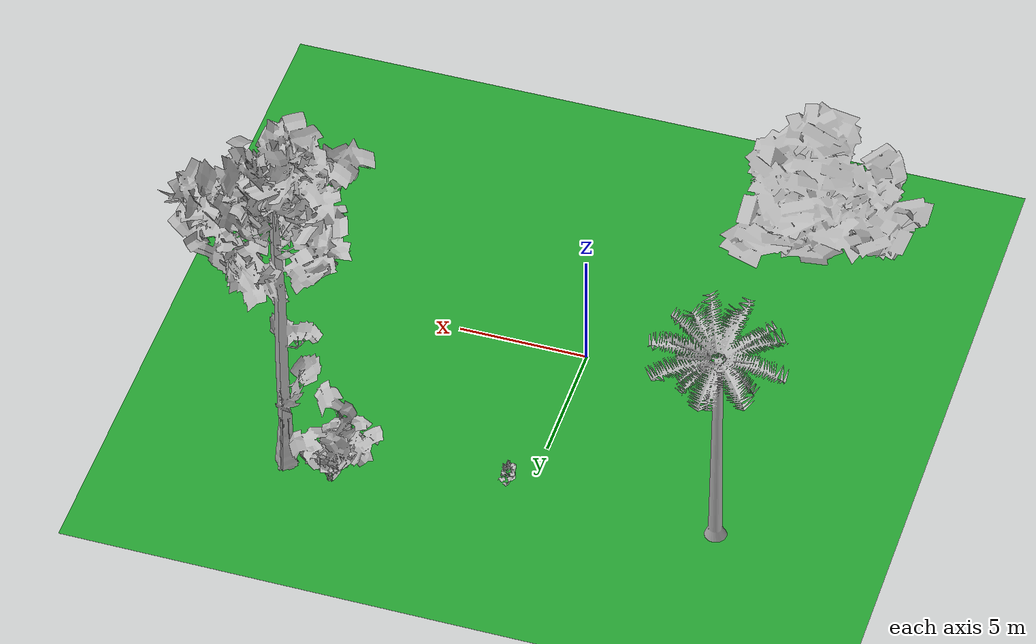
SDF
<sdf version="1.7">
 <world name="gmlaas">
  <light name="sun" type="directional">
   <pose>0 0 10 0 -0 0</pose>
   <diffuse>0.8 0.8 0.8 1</diffuse>
   <specular>0.2 0.2 0.2 1</specular>
   <attenuation>
    <range>1000</range>
    <constant>0.9</constant>
    <linear>0.01</linear>
    <quadratic>0.001</quadratic>
   </attenuation>
   <direction>-0.5 0.1 -0.9</direction>
   <spot><inner_angle>0</inner_angle><outer_angle>0</outer_angle><falloff>0</falloff></spot>
  </light>
  <model name="ground_plane">
   <static>1</static>
   <link name="link">
    <collision name="collision">
     <geometry><plane><normal>0 0 1</normal><size>100 100</size></plane></geometry>
     <surface>
      <contact><collide_bitmask>65535</collide_bitmask></contact>
      <friction><ode><mu>100</mu><mu2>50</mu2></ode></friction>
     </surface>
    </collision>
    <visual name="visual">
     <cast_shadows>0</cast_shadows>
     <geometry><plane><normal>0 0 1</normal><size>100 100</size></plane></geometry>
     <material>
      <script><uri>file://media/materials/scripts/gazebo.material</uri><name>Gazebo/Green</name></script>
     </material>
    </visual>
   </link>
  </model>
  <gravity>0 0 0</gravity>
  <magnetic_field>6e-06 2.3e-05 -4.2e-05</magnetic_field>
  <atmosphere type="adiabatic"/>
  <physics type="ode">
   <max_step_size>0.001</max_step_size>
   <real_time_factor>1</real_time_factor>
   <real_time_update_rate>1000</real_time_update_rate>
  </physics>
  <scene><ambient>0 0.4 0.4 1</ambient><background>0.2 0.7 0.7 1</background><shadows>1</shadows></scene>
  <spherical_coordinates>
   <surface_model>EARTH_WGS84</surface_model>
   <latitude_deg>0</latitude_deg>
   <longitude_deg>0</longitude_deg>
   <elevation>0</elevation>
   <heading_deg>0</heading_deg>
  </spherical_coordinates>
  <light name="user_spot_light_1" type="spot">
   <pose>4.60707 3.07046 1 0 -0 0</pose>
   <diffuse>0.5 0.5 0.5 1</diffuse>
   <specular>0.1 0.1 0.1 1</specular>
   <direction>0 0 -1</direction>
   <attenuation>
    <range>20</range>
    <constant>0.5</constant>
    <linear>0.01</linear>
    <quadratic>0.001</quadratic>
   </attenuation>
   <cast_shadows>0</cast_shadows>
   <spot><inner_angle>0.6</inner_angle><outer_angle>1</outer_angle><falloff>1</falloff></spot>
  </light>
  <model name="Decor - Palm Tree">
   <static>1</static>
   <link name="link">
    <collision name="collision">
     <geometry>
      <mesh><scale>0.02 0.02 0.02</scale><uri>model://palm_tree/meshes/palm_tree.dae</uri></mesh>
     </geometry>
    </collision>
    <visual name="visual">
     <geometry>
      <mesh><scale>0.02 0.02 0.02</scale><uri>model://palm_tree/meshes/palm_tree.dae</uri></mesh>
     </geometry>
    </visual>
   </link>
   <pose>-7.22227 7.39987 0 0 -0 0</pose>
  </model>
  <model name="Decor - Oak tree">
   <static>1</static>
   <pose>0.835773 7.19926 0 1.57079 -0 0</pose>
   <link name="link">
    <collision name="collision">
     <geometry><mesh><scale>5 5 5</scale><uri>model://tree_6/meshes/tree.obj</uri></mesh></geometry>
    </collision>
    <visual name="visual">
     <geometry><mesh><scale>5 5 5</scale><uri>model://tree_6/meshes/tree.obj</uri></mesh></geometry>
    </visual>
   </link>
  </model>
  <model name="Decor - Tree 9">
   <static>1</static>
   <pose>9.08018 8.57566 0 1.57079 -0 0</pose>
   <link name="link">
    <collision name="collision">
     <geometry><mesh><scale>5 5 5</scale><uri>model://tree_9/meshes/tree_9.obj</uri></mesh></geometry>
    </collision>
    <visual name="visual">
     <geometry><mesh><scale>5 5 5</scale><uri>model://tree_9/meshes/tree_9.obj</uri></mesh></geometry>
    </visual>
   </link>
  </model>
  <model name="Decor - Tree 3">
   <static>1</static>
   <pose>-7.18191 -7.9529 0 1.57079 -0 0</pose>
   <link name="link">
    <collision name="collision">
     <geometry><mesh><scale>5 5 5</scale><uri>model://tree_3/meshes/tree_3.obj</uri></mesh></geometry>
    </collision>
    <visual name="visual">
     <geometry><mesh><scale>5 5 5</scale><uri>model://tree_3/meshes/tree_3.obj</uri></mesh></geometry>
    </visual>
   </link>
  </model>
  <model name="Decor - Bush 0">
   <static>1</static>
   <pose>7.22626 8.90836 0 1.57079 -0 0</pose>
   <link name="link">
    <collision name="collision">
     <geometry><mesh><scale>5 5 5</scale><uri>model://bush_0/meshes/bush_0.obj</uri></mesh></geometry>
    </collision>
    <visual name="visual">
     <geometry><mesh><scale>5 5 5</scale><uri>model://bush_0/meshes/bush_0.obj</uri></mesh></geometry>
    </visual>
   </link>
  </model>
 </world>
</sdf>
